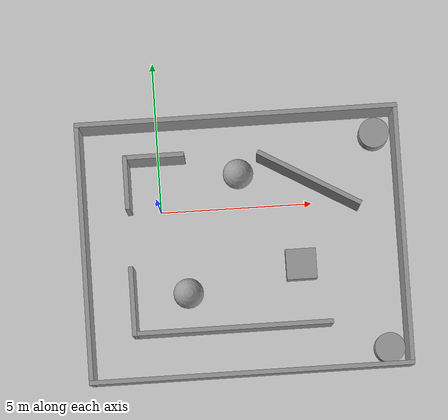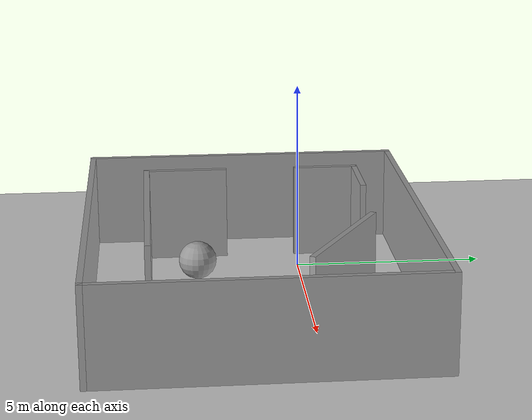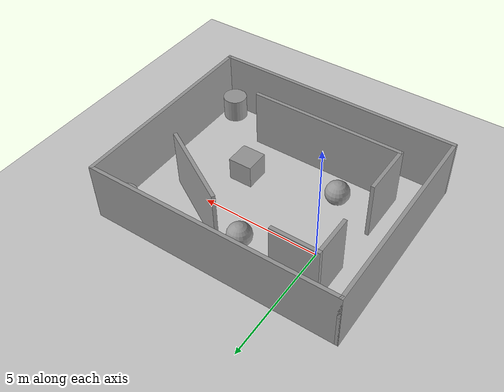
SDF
<sdf version="1.7">
 <world name="default">
  <light name="sun" type="directional">
   <pose>0 0 10 0 -0 0</pose>
   <diffuse>0.8 0.8 0.8 1</diffuse>
   <specular>0.2 0.2 0.2 1</specular>
   <attenuation>
    <range>1000</range>
    <constant>0.9</constant>
    <linear>0.01</linear>
    <quadratic>0.001</quadratic>
   </attenuation>
   <direction>-0.5 0.1 -0.9</direction>
   <spot><inner_angle>0</inner_angle><outer_angle>0</outer_angle><falloff>0</falloff></spot>
  </light>
  <model name="ground_plane">
   <static>1</static>
   <link name="link">
    <collision name="collision">
     <geometry><plane><normal>0 0 1</normal><size>100 100</size></plane></geometry>
     <surface>
      <contact><collide_bitmask>65535</collide_bitmask></contact>
      <friction><ode><mu>100</mu><mu2>50</mu2></ode></friction>
     </surface>
    </collision>
    <visual name="visual">
     <cast_shadows>0</cast_shadows>
     <geometry><plane><normal>0 0 1</normal><size>100 100</size></plane></geometry>
     <material>
      <script><uri>file://media/materials/scripts/gazebo.material</uri><name>Gazebo/Grey</name></script>
     </material>
    </visual>
   </link>
  </model>
  <gravity>0 0 -9.8</gravity>
  <magnetic_field>6e-06 2.3e-05 -4.2e-05</magnetic_field>
  <atmosphere type="adiabatic"/>
  <physics type="ode">
   <max_step_size>0.001</max_step_size>
   <real_time_factor>1</real_time_factor>
   <real_time_update_rate>1000</real_time_update_rate>
  </physics>
  <scene><ambient>0.4 0.4 0.4 1</ambient><background>0.7 0.7 0.7 1</background><shadows>1</shadows></scene>
  <spherical_coordinates>
   <surface_model>EARTH_WGS84</surface_model>
   <latitude_deg>0</latitude_deg>
   <longitude_deg>0</longitude_deg>
   <elevation>0</elevation>
   <heading_deg>0</heading_deg>
  </spherical_coordinates>
  <model name="Gmapping2">
   <pose>2.64758 -1.35004 0 0 -0 0</pose>
   <link name="Wall_14">
    <collision name="Wall_14_Collision">
     <geometry><box><size>8.5 0.15 2.5</size></box></geometry>
     <pose>0 0 1.25 0 -0 0</pose>
    </collision>
    <visual name="Wall_14_Visual">
     <pose>0 0 1.25 0 -0 0</pose>
     <geometry><box><size>8.5 0.15 2.5</size></box></geometry>
     <material>
      <script><uri>file://media/materials/scripts/gazebo.material</uri><name>Gazebo/Grey</name></script>
      <ambient>1 1 1 1</ambient>
     </material>
     <meta><layer>0</layer></meta>
    </visual>
    <pose>-5.175 -0 0 0 -0 1.5708</pose>
   </link>
   <link name="Wall_15">
    <collision name="Wall_15_Collision">
     <geometry><box><size>10.5 0.15 2.5</size></box></geometry>
     <pose>0 0 1.25 0 -0 0</pose>
    </collision>
    <visual name="Wall_15_Visual">
     <pose>0 0 1.25 0 -0 0</pose>
     <geometry><box><size>10.5 0.15 2.5</size></box></geometry>
     <material>
      <script><uri>file://media/materials/scripts/gazebo.material</uri><name>Gazebo/Grey</name></script>
      <ambient>1 1 1 1</ambient>
     </material>
     <meta><layer>0</layer></meta>
    </visual>
    <pose>0 4.175 0 0 -0 0</pose>
   </link>
   <link name="Wall_16">
    <collision name="Wall_16_Collision">
     <geometry><box><size>8.5 0.15 2.5</size></box></geometry>
     <pose>0 0 1.25 0 -0 0</pose>
    </collision>
    <visual name="Wall_16_Visual">
     <pose>0 0 1.25 0 -0 0</pose>
     <geometry><box><size>8.5 0.15 2.5</size></box></geometry>
     <material>
      <script><uri>file://media/materials/scripts/gazebo.material</uri><name>Gazebo/Grey</name></script>
      <ambient>1 1 1 1</ambient>
     </material>
     <meta><layer>0</layer></meta>
    </visual>
    <pose>5.175 -0 0 0 -0 -1.5708</pose>
   </link>
   <link name="Wall_17">
    <collision name="Wall_17_Collision">
     <geometry><box><size>10.5 0.15 2.5</size></box></geometry>
     <pose>0 0 1.25 0 -0 0</pose>
    </collision>
    <visual name="Wall_17_Visual">
     <pose>0 0 1.25 0 -0 0</pose>
     <geometry><box><size>10.5 0.15 2.5</size></box></geometry>
     <material>
      <script><uri>file://media/materials/scripts/gazebo.material</uri><name>Gazebo/Grey</name></script>
      <ambient>1 1 1 1</ambient>
     </material>
     <meta><layer>0</layer></meta>
    </visual>
    <pose>0 -4.175 0 0 -0 3.14159</pose>
   </link>
   <link name="Wall_20">
    <collision name="Wall_20_Collision">
     <geometry><box><size>2.25 0.15 2.5</size></box></geometry>
     <pose>0 0 1.25 0 -0 0</pose>
    </collision>
    <visual name="Wall_20_Visual">
     <pose>0 0 1.25 0 -0 0</pose>
     <geometry><box><size>2.25 0.15 2.5</size></box></geometry>
     <material>
      <script><uri>file://media/materials/scripts/gazebo.material</uri><name>Gazebo/Grey</name></script>
      <ambient>1 1 1 1</ambient>
     </material>
     <meta><layer>0</layer></meta>
    </visual>
    <pose>-3.69464 -1.63976 0 0 -0 -1.5708</pose>
   </link>
   <link name="Wall_21">
    <collision name="Wall_21_Collision">
     <geometry><box><size>6.5 0.15 2.5</size></box></geometry>
     <pose>0 0 1.25 0 -0 0</pose>
    </collision>
    <visual name="Wall_21_Visual">
     <pose>0 0 1.25 0 -0 0</pose>
     <geometry><box><size>6.5 0.15 2.5</size></box></geometry>
     <material>
      <script><uri>file://media/materials/scripts/gazebo.material</uri><name>Gazebo/Grey</name></script>
      <ambient>1 1 1 1</ambient>
     </material>
     <meta><layer>0</layer></meta>
    </visual>
    <pose>-0.519641 -2.68976 0 0 -0 0</pose>
   </link>
   <link name="Wall_24">
    <collision name="Wall_24_Collision">
     <geometry><box><size>3.75 0.15 2.5</size></box></geometry>
     <pose>0 0 1.25 0 -0 0</pose>
    </collision>
    <visual name="Wall_24_Visual">
     <pose>0 0 1.25 0 -0 0</pose>
     <geometry><box><size>3.75 0.15 2.5</size></box></geometry>
     <material>
      <script><uri>file://media/materials/scripts/gazebo.material</uri><name>Gazebo/Grey</name></script>
      <ambient>1 1 1 1</ambient>
     </material>
     <meta><layer>0</layer></meta>
    </visual>
    <pose>2.25902 2.00297 0 0 -0 -0.523599</pose>
   </link>
   <link name="Wall_26">
    <collision name="Wall_26_Collision">
     <geometry><box><size>2 0.15 2.5</size></box></geometry>
     <pose>0 0 1.25 0 -0 0</pose>
    </collision>
    <visual name="Wall_26_Visual">
     <pose>0 0 1.25 0 -0 0</pose>
     <geometry><box><size>2 0.15 2.5</size></box></geometry>
     <material>
      <script><uri>file://media/materials/scripts/gazebo.material</uri><name>Gazebo/Grey</name></script>
      <ambient>1 1 1 1</ambient>
     </material>
     <meta><layer>0</layer></meta>
    </visual>
    <pose>-2.74651 3.01862 0 0 -0 0</pose>
   </link>
   <link name="Wall_28">
    <collision name="Wall_28_Collision">
     <geometry><box><size>1.75 0.15 2.5</size></box></geometry>
     <pose>0 0 1.25 0 -0 0</pose>
    </collision>
    <visual name="Wall_28_Visual">
     <pose>0 0 1.25 0 -0 0</pose>
     <geometry><box><size>1.75 0.15 2.5</size></box></geometry>
     <material>
      <script><uri>file://media/materials/scripts/gazebo.material</uri><name>Gazebo/Grey</name></script>
      <ambient>1 1 1 1</ambient>
     </material>
     <meta><layer>0</layer></meta>
    </visual>
    <pose>-3.67151 2.21862 0 0 -0 -1.5708</pose>
   </link>
   <static>1</static>
  </model>
  <model name="unit_box">
   <pose>4.49694 -2.03269 0.5 0 -0 0</pose>
   <link name="link">
    <inertial>
     <mass>1</mass>
     <inertia>
      <ixx>0.166667</ixx>
      <ixy>0</ixy>
      <ixz>0</ixz>
      <iyy>0.166667</iyy>
      <iyz>0</iyz>
      <izz>0.166667</izz>
     </inertia>
    </inertial>
    <collision name="collision"><geometry><box><size>1 1 1</size></box></geometry></collision>
    <visual name="visual">
     <geometry><box><size>1 1 1</size></box></geometry>
     <material>
      <script><name>Gazebo/Grey</name><uri>file://media/materials/scripts/gazebo.material</uri></script>
     </material>
    </visual>
   </link>
  </model>
  <model name="unit_cylinder">
   <pose>7.16981 2.12499 0.5 0 -0 0</pose>
   <link name="link">
    <inertial>
     <mass>1</mass>
     <inertia><ixx>0.145833</ixx><ixy>0</ixy><ixz>0</ixz><iyy>0.145833</iyy><iyz>0</iyz><izz>0.125</izz></inertia>
    </inertial>
    <collision name="collision">
     <geometry><cylinder><radius>0.5</radius><length>1</length></cylinder></geometry>
    </collision>
    <visual name="visual">
     <geometry><cylinder><radius>0.5</radius><length>1</length></cylinder></geometry>
     <material>
      <script><name>Gazebo/Grey</name><uri>file://media/materials/scripts/gazebo.material</uri></script>
     </material>
    </visual>
   </link>
  </model>
  <model name="unit_sphere">
   <pose>0.740263 -2.74292 0.5 0 -0 0</pose>
   <link name="link">
    <inertial>
     <mass>1</mass>
     <inertia><ixx>0.1</ixx><ixy>0</ixy><ixz>0</ixz><iyy>0.1</iyy><iyz>0</iyz><izz>0.1</izz></inertia>
    </inertial>
    <collision name="collision"><geometry><sphere><radius>0.5</radius></sphere></geometry></collision>
    <visual name="visual">
     <geometry><sphere><radius>0.5</radius></sphere></geometry>
     <material>
      <script><name>Gazebo/Grey</name><uri>file://media/materials/scripts/gazebo.material</uri></script>
     </material>
    </visual>
   </link>
  </model>
  <model name="unit_sphere_0">
   <pose>2.61769 1.10026 0.5 0 -0 0</pose>
   <link name="link">
    <inertial>
     <mass>1</mass>
     <inertia><ixx>0.1</ixx><ixy>0</ixy><ixz>0</ixz><iyy>0.1</iyy><iyz>0</iyz><izz>0.1</izz></inertia>
    </inertial>
    <collision name="collision"><geometry><sphere><radius>0.5</radius></sphere></geometry></collision>
    <visual name="visual">
     <geometry><sphere><radius>0.5</radius></sphere></geometry>
     <material>
      <script><name>Gazebo/Grey</name><uri>file://media/materials/scripts/gazebo.material</uri></script>
     </material>
    </visual>
   </link>
  </model>
  <model name="unit_cylinder_0">
   <pose>7.21936 -4.96451 0.5 0 -0 0</pose>
   <link name="link">
    <inertial>
     <mass>1</mass>
     <inertia><ixx>0.145833</ixx><ixy>0</ixy><ixz>0</ixz><iyy>0.145833</iyy><iyz>0</iyz><izz>0.125</izz></inertia>
    </inertial>
    <collision name="collision">
     <geometry><cylinder><radius>0.5</radius><length>1</length></cylinder></geometry>
    </collision>
    <visual name="visual">
     <geometry><cylinder><radius>0.5</radius><length>1</length></cylinder></geometry>
     <material>
      <script><name>Gazebo/Grey</name><uri>file://media/materials/scripts/gazebo.material</uri></script>
     </material>
    </visual>
   </link>
  </model>
 </world>
</sdf>
